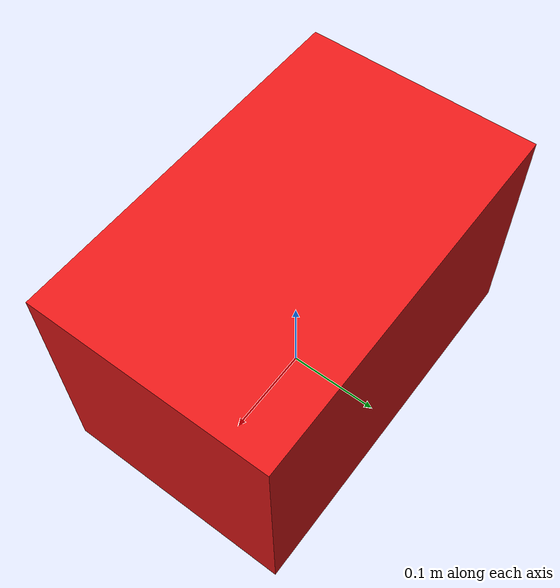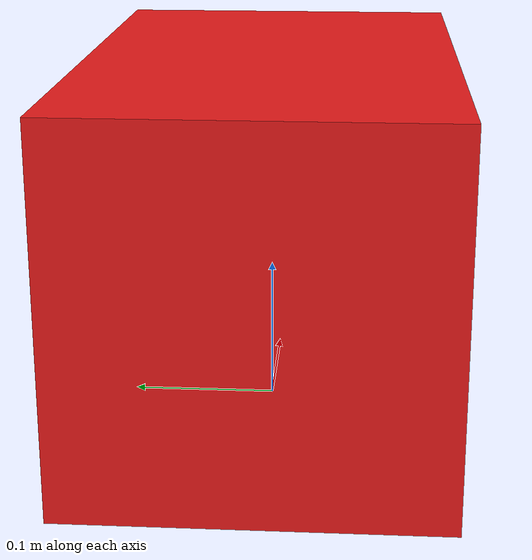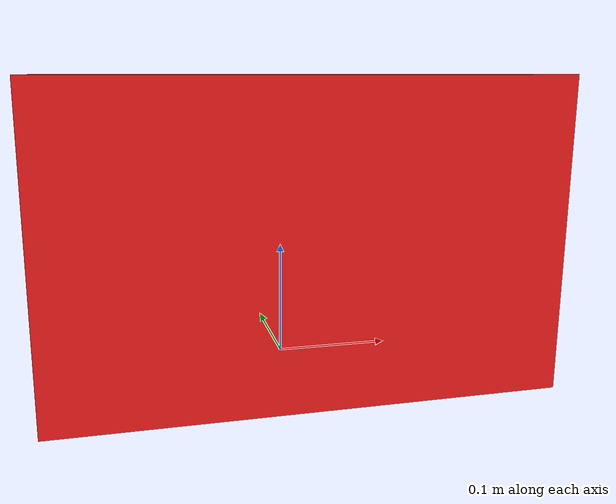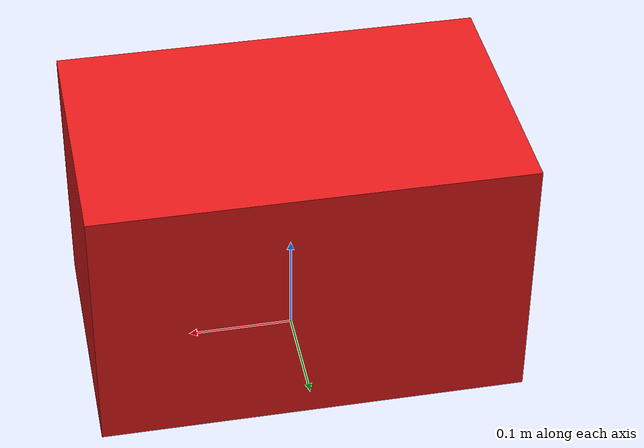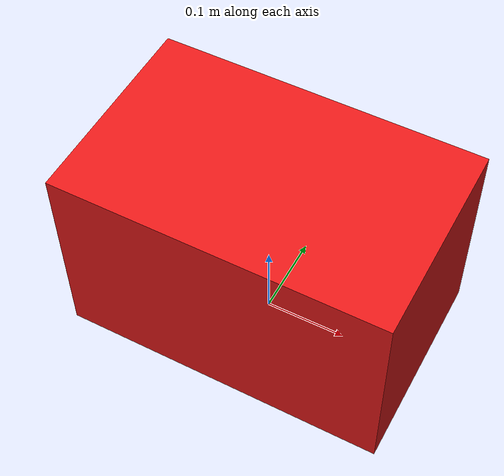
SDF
<?xml version="1.0"?>
<sdf version="1.7">
<model name="red_toolbox">
  <static>true</static>

  <link name="body">
    <pose>0 0 0.125 0 0 0</pose>

    <visual name="visual">
      <geometry>
        <box><size>0.4 0.25 0.25</size></box>
      </geometry>
      <material>
        <ambient>0.8 0.0 0.0 1</ambient>
        <diffuse>0.9 0.1 0.1 1</diffuse>
      </material>
    </visual>

    <collision name="collision">
      <geometry>
        <box><size>0.4 0.25 0.25</size></box>
      </geometry>
    </collision>
  </link>

</model>
</sdf>
